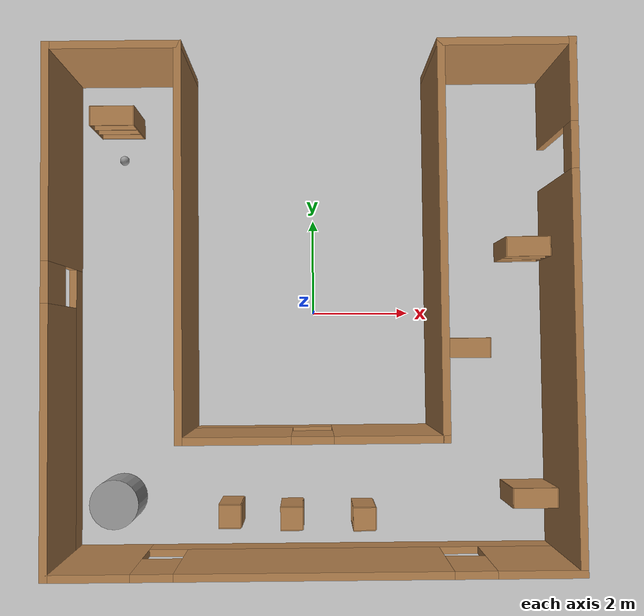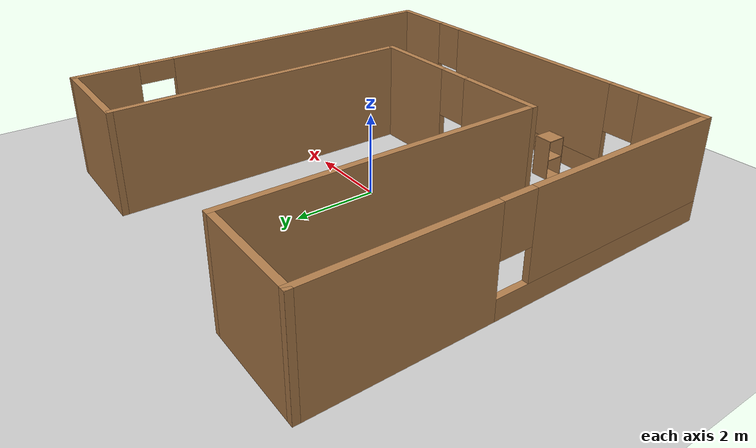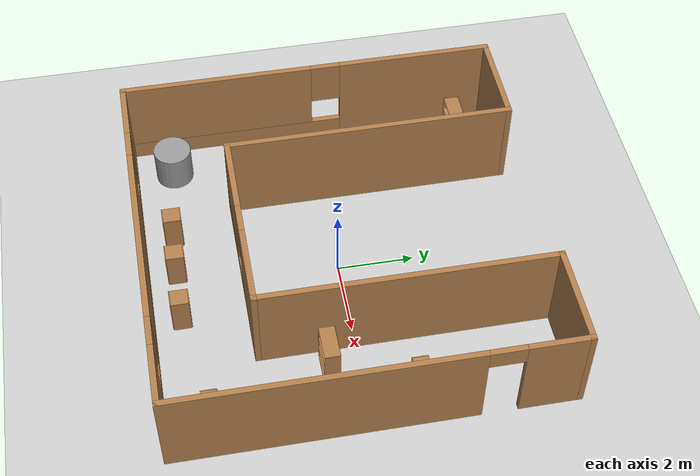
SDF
<sdf version="1.6">
 <world name="default">
  <light name="sun" type="directional">
   <pose>0 0 10 0 -0 0</pose>
   <diffuse>0.8 0.8 0.8 1</diffuse>
   <specular>0.2 0.2 0.2 1</specular>
   <attenuation>
    <range>1000</range>
    <constant>0.9</constant>
    <linear>0.01</linear>
    <quadratic>0.001</quadratic>
   </attenuation>
   <direction>-0.5 0.1 -0.9</direction>
  </light>
  <model name="ground_plane">
   <static>1</static>
   <link name="link">
    <collision name="collision">
     <geometry><plane><normal>0 0 1</normal><size>100 100</size></plane></geometry>
     <surface>
      <contact><collide_bitmask>65535</collide_bitmask></contact>
      <friction><ode><mu>100</mu><mu2>50</mu2></ode></friction>
     </surface>
    </collision>
    <visual name="visual">
     <cast_shadows>0</cast_shadows>
     <geometry><plane><normal>0 0 1</normal><size>100 100</size></plane></geometry>
     <material>
      <script><uri>file://media/materials/scripts/gazebo.material</uri><name>Gazebo/Grey</name></script>
     </material>
    </visual>
   </link>
  </model>
  <gravity>0 0 -9.8</gravity>
  <magnetic_field>6e-06 2.3e-05 -4.2e-05</magnetic_field>
  <atmosphere type="adiabatic"/>
  <physics name="default_physics" default="0" type="ode">
   <max_step_size>0.001</max_step_size>
   <real_time_factor>1</real_time_factor>
   <real_time_update_rate>1000</real_time_update_rate>
  </physics>
  <scene><ambient>0.4 0.4 0.4 1</ambient><background>0.7 0.7 0.7 1</background><shadows>1</shadows></scene>
  <audio><device>default</device></audio>
  <spherical_coordinates>
   <surface_model>EARTH_WGS84</surface_model>
   <latitude_deg>0</latitude_deg>
   <longitude_deg>0</longitude_deg>
   <elevation>0</elevation>
   <heading_deg>0</heading_deg>
  </spherical_coordinates>
  <model name="my_ball">
   <link name="link_0">
    <inertial>
     <mass>1</mass>
     <inertia><ixx>0.1</ixx><ixy>0</ixy><ixz>0</ixz><iyy>0.1</iyy><iyz>0</iyz><izz>0.1</izz></inertia>
    </inertial>
    <visual name="visual">
     <geometry><sphere><radius>0.1</radius></sphere></geometry>
     <material>
      <lighting>1</lighting>
      <script><uri>file://media/materials/scripts/gazebo.material</uri><name>Gazebo/Grey</name></script>
      <shader type="vertex"><normal_map>__default__</normal_map></shader>
      <ambient>1 1 1 1</ambient>
      <diffuse>1 1 1 1</diffuse>
      <specular>1 1 1 1</specular>
      <emissive>1 1 1 1</emissive>
     </material>
    </visual>
    <collision name="collision">
     <geometry><sphere><radius>0.1</radius></sphere></geometry>
     <surface>
      <friction>
       <ode><mu>1</mu><mu2>1</mu2><fdir1>0 0 0</fdir1><slip1>0</slip1><slip2>0</slip2></ode>
       <torsional>
        <coefficient>1</coefficient>
        <patch_radius>0</patch_radius>
        <surface_radius>0</surface_radius>
        <use_patch_radius>1</use_patch_radius>
        <ode><slip>0</slip></ode>
       </torsional>
      </friction>
      <bounce><restitution_coefficient>0</restitution_coefficient><threshold>1e+06</threshold></bounce>
      <contact>
       <collide_without_contact>0</collide_without_contact>
       <collide_without_contact_bitmask>1</collide_without_contact_bitmask>
       <collide_bitmask>1</collide_bitmask>
       <ode>
        <soft_cfm>0</soft_cfm>
        <soft_erp>0.2</soft_erp>
        <kp>1e+13</kp>
        <kd>1</kd>
        <max_vel>0.01</max_vel>
        <min_depth>0</min_depth>
       </ode>
       <bullet>
        <split_impulse>1</split_impulse>
        <split_impulse_penetration_threshold>-0.01</split_impulse_penetration_threshold>
        <soft_cfm>0</soft_cfm>
        <soft_erp>0.2</soft_erp>
        <kp>1e+13</kp>
        <kd>1</kd>
       </bullet>
      </contact>
     </surface>
    </collision>
   </link>
   <static>0</static>
   <pose>-4.04322 3.3476 0.1 0 -0 0</pose>
  </model>
  <plugin name="collision_map_creator" filename="libcollision_map_creator.so"/>
  <model name="bookshelf_clone">
   <static>1</static>
   <link name="link">
    <inertial><mass>1</mass></inertial>
    <collision name="back">
     <pose>0 0.005 0.6 0 -0 0</pose>
     <geometry><box><size>0.9 0.01 1.2</size></box></geometry>
    </collision>
    <visual name="visual1">
     <pose>0 0.005 0.6 0 -0 0</pose>
     <geometry><box><size>0.9 0.01 1.2</size></box></geometry>
     <material>
      <script><uri>file://media/materials/scripts/gazebo.material</uri><name>Gazebo/Wood</name></script>
     </material>
    </visual>
    <collision name="left_side">
     <pose>0.45 -0.195 0.6 0 -0 0</pose>
     <geometry><box><size>0.02 0.4 1.2</size></box></geometry>
    </collision>
    <visual name="visual2">
     <pose>0.45 -0.195 0.6 0 -0 0</pose>
     <geometry><box><size>0.02 0.4 1.2</size></box></geometry>
     <material>
      <script><uri>file://media/materials/scripts/gazebo.material</uri><name>Gazebo/Wood</name></script>
     </material>
    </visual>
    <collision name="right_side">
     <pose>-0.45 -0.195 0.6 0 -0 0</pose>
     <geometry><box><size>0.02 0.4 1.2</size></box></geometry>
    </collision>
    <visual name="visual3">
     <pose>-0.45 -0.195 0.6 0 -0 0</pose>
     <geometry><box><size>0.02 0.4 1.2</size></box></geometry>
     <material>
      <script><uri>file://media/materials/scripts/gazebo.material</uri><name>Gazebo/Wood</name></script>
     </material>
    </visual>
    <collision name="bottom">
     <pose>0 -0.195 0.03 0 -0 0</pose>
     <geometry><box><size>0.88 0.4 0.06</size></box></geometry>
    </collision>
    <visual name="visual4">
     <pose>0 -0.195 0.03 0 -0 0</pose>
     <geometry><box><size>0.88 0.4 0.06</size></box></geometry>
     <material>
      <script><uri>file://media/materials/scripts/gazebo.material</uri><name>Gazebo/Wood</name></script>
     </material>
    </visual>
    <collision name="top">
     <pose>0 -0.195 1.19 0 -0 0</pose>
     <geometry><box><size>0.88 0.4 0.02</size></box></geometry>
    </collision>
    <visual name="visual5">
     <pose>0 -0.195 1.19 0 -0 0</pose>
     <geometry><box><size>0.88 0.4 0.02</size></box></geometry>
     <material>
      <script><uri>file://media/materials/scripts/gazebo.material</uri><name>Gazebo/Wood</name></script>
     </material>
    </visual>
    <collision name="low_shelf">
     <pose>0 -0.195 0.43 0 -0 0</pose>
     <geometry><box><size>0.88 0.4 0.02</size></box></geometry>
    </collision>
    <visual name="visual6">
     <pose>0 -0.195 0.43 0 -0 0</pose>
     <geometry><box><size>0.88 0.4 0.02</size></box></geometry>
     <material>
      <script><uri>file://media/materials/scripts/gazebo.material</uri><name>Gazebo/Wood</name></script>
     </material>
    </visual>
    <collision name="high_shelf">
     <pose>0 -0.195 0.8 0 -0 0</pose>
     <geometry><box><size>0.88 0.4 0.02</size></box></geometry>
    </collision>
    <visual name="visual7">
     <pose>0 -0.195 0.8 0 -0 0</pose>
     <geometry><box><size>0.88 0.4 0.02</size></box></geometry>
     <material>
      <script><uri>file://media/materials/scripts/gazebo.material</uri><name>Gazebo/Wood</name></script>
     </material>
    </visual>
   </link>
   <pose>3.10801 -0.563301 0 0 -0 0</pose>
  </model>
  <model name="bookshelf_clone_0">
   <static>1</static>
   <link name="link">
    <inertial><mass>1</mass></inertial>
    <collision name="back">
     <pose>0 0.005 0.6 0 -0 0</pose>
     <geometry><box><size>0.9 0.01 1.2</size></box></geometry>
    </collision>
    <visual name="visual1">
     <pose>0 0.005 0.6 0 -0 0</pose>
     <geometry><box><size>0.9 0.01 1.2</size></box></geometry>
     <material>
      <script><uri>file://media/materials/scripts/gazebo.material</uri><name>Gazebo/Wood</name></script>
     </material>
    </visual>
    <collision name="left_side">
     <pose>0.45 -0.195 0.6 0 -0 0</pose>
     <geometry><box><size>0.02 0.4 1.2</size></box></geometry>
    </collision>
    <visual name="visual2">
     <pose>0.45 -0.195 0.6 0 -0 0</pose>
     <geometry><box><size>0.02 0.4 1.2</size></box></geometry>
     <material>
      <script><uri>file://media/materials/scripts/gazebo.material</uri><name>Gazebo/Wood</name></script>
     </material>
    </visual>
    <collision name="right_side">
     <pose>-0.45 -0.195 0.6 0 -0 0</pose>
     <geometry><box><size>0.02 0.4 1.2</size></box></geometry>
    </collision>
    <visual name="visual3">
     <pose>-0.45 -0.195 0.6 0 -0 0</pose>
     <geometry><box><size>0.02 0.4 1.2</size></box></geometry>
     <material>
      <script><uri>file://media/materials/scripts/gazebo.material</uri><name>Gazebo/Wood</name></script>
     </material>
    </visual>
    <collision name="bottom">
     <pose>0 -0.195 0.03 0 -0 0</pose>
     <geometry><box><size>0.88 0.4 0.06</size></box></geometry>
    </collision>
    <visual name="visual4">
     <pose>0 -0.195 0.03 0 -0 0</pose>
     <geometry><box><size>0.88 0.4 0.06</size></box></geometry>
     <material>
      <script><uri>file://media/materials/scripts/gazebo.material</uri><name>Gazebo/Wood</name></script>
     </material>
    </visual>
    <collision name="top">
     <pose>0 -0.195 1.19 0 -0 0</pose>
     <geometry><box><size>0.88 0.4 0.02</size></box></geometry>
    </collision>
    <visual name="visual5">
     <pose>0 -0.195 1.19 0 -0 0</pose>
     <geometry><box><size>0.88 0.4 0.02</size></box></geometry>
     <material>
      <script><uri>file://media/materials/scripts/gazebo.material</uri><name>Gazebo/Wood</name></script>
     </material>
    </visual>
    <collision name="low_shelf">
     <pose>0 -0.195 0.43 0 -0 0</pose>
     <geometry><box><size>0.88 0.4 0.02</size></box></geometry>
    </collision>
    <visual name="visual6">
     <pose>0 -0.195 0.43 0 -0 0</pose>
     <geometry><box><size>0.88 0.4 0.02</size></box></geometry>
     <material>
      <script><uri>file://media/materials/scripts/gazebo.material</uri><name>Gazebo/Wood</name></script>
     </material>
    </visual>
    <collision name="high_shelf">
     <pose>0 -0.195 0.8 0 -0 0</pose>
     <geometry><box><size>0.88 0.4 0.02</size></box></geometry>
    </collision>
    <visual name="visual7">
     <pose>0 -0.195 0.8 0 -0 0</pose>
     <geometry><box><size>0.88 0.4 0.02</size></box></geometry>
     <material>
      <script><uri>file://media/materials/scripts/gazebo.material</uri><name>Gazebo/Wood</name></script>
     </material>
    </visual>
   </link>
   <pose>4.40386 -3.57755 0 0 -0 0</pose>
  </model>
  <model name="bookshelf_clone_4">
   <static>1</static>
   <link name="link">
    <inertial><mass>1</mass></inertial>
    <collision name="back">
     <pose>0 0.005 0.6 0 -0 0</pose>
     <geometry><box><size>0.9 0.01 1.2</size></box></geometry>
    </collision>
    <visual name="visual1">
     <pose>0 0.005 0.6 0 -0 0</pose>
     <geometry><box><size>0.9 0.01 1.2</size></box></geometry>
     <material>
      <script><uri>file://media/materials/scripts/gazebo.material</uri><name>Gazebo/Wood</name></script>
     </material>
    </visual>
    <collision name="left_side">
     <pose>0.45 -0.195 0.6 0 -0 0</pose>
     <geometry><box><size>0.02 0.4 1.2</size></box></geometry>
    </collision>
    <visual name="visual2">
     <pose>0.45 -0.195 0.6 0 -0 0</pose>
     <geometry><box><size>0.02 0.4 1.2</size></box></geometry>
     <material>
      <script><uri>file://media/materials/scripts/gazebo.material</uri><name>Gazebo/Wood</name></script>
     </material>
    </visual>
    <collision name="right_side">
     <pose>-0.45 -0.195 0.6 0 -0 0</pose>
     <geometry><box><size>0.02 0.4 1.2</size></box></geometry>
    </collision>
    <visual name="visual3">
     <pose>-0.45 -0.195 0.6 0 -0 0</pose>
     <geometry><box><size>0.02 0.4 1.2</size></box></geometry>
     <material>
      <script><uri>file://media/materials/scripts/gazebo.material</uri><name>Gazebo/Wood</name></script>
     </material>
    </visual>
    <collision name="bottom">
     <pose>0 -0.195 0.03 0 -0 0</pose>
     <geometry><box><size>0.88 0.4 0.06</size></box></geometry>
    </collision>
    <visual name="visual4">
     <pose>0 -0.195 0.03 0 -0 0</pose>
     <geometry><box><size>0.88 0.4 0.06</size></box></geometry>
     <material>
      <script><uri>file://media/materials/scripts/gazebo.material</uri><name>Gazebo/Wood</name></script>
     </material>
    </visual>
    <collision name="top">
     <pose>0 -0.195 1.19 0 -0 0</pose>
     <geometry><box><size>0.88 0.4 0.02</size></box></geometry>
    </collision>
    <visual name="visual5">
     <pose>0 -0.195 1.19 0 -0 0</pose>
     <geometry><box><size>0.88 0.4 0.02</size></box></geometry>
     <material>
      <script><uri>file://media/materials/scripts/gazebo.material</uri><name>Gazebo/Wood</name></script>
     </material>
    </visual>
    <collision name="low_shelf">
     <pose>0 -0.195 0.43 0 -0 0</pose>
     <geometry><box><size>0.88 0.4 0.02</size></box></geometry>
    </collision>
    <visual name="visual6">
     <pose>0 -0.195 0.43 0 -0 0</pose>
     <geometry><box><size>0.88 0.4 0.02</size></box></geometry>
     <material>
      <script><uri>file://media/materials/scripts/gazebo.material</uri><name>Gazebo/Wood</name></script>
     </material>
    </visual>
    <collision name="high_shelf">
     <pose>0 -0.195 0.8 0 -0 0</pose>
     <geometry><box><size>0.88 0.4 0.02</size></box></geometry>
    </collision>
    <visual name="visual7">
     <pose>0 -0.195 0.8 0 -0 0</pose>
     <geometry><box><size>0.88 0.4 0.02</size></box></geometry>
     <material>
      <script><uri>file://media/materials/scripts/gazebo.material</uri><name>Gazebo/Wood</name></script>
     </material>
    </visual>
   </link>
   <pose>-4.07925 4.2363 0 0 -0 0</pose>
  </model>
  <model name="bookshelf_clone_5">
   <static>1</static>
   <link name="link">
    <inertial><mass>1</mass></inertial>
    <collision name="back">
     <pose>0 0.005 0.6 0 -0 0</pose>
     <geometry><box><size>0.9 0.01 1.2</size></box></geometry>
    </collision>
    <visual name="visual1">
     <pose>0 0.005 0.6 0 -0 0</pose>
     <geometry><box><size>0.9 0.01 1.2</size></box></geometry>
     <material>
      <script><uri>file://media/materials/scripts/gazebo.material</uri><name>Gazebo/Wood</name></script>
     </material>
    </visual>
    <collision name="left_side">
     <pose>0.45 -0.195 0.6 0 -0 0</pose>
     <geometry><box><size>0.02 0.4 1.2</size></box></geometry>
    </collision>
    <visual name="visual2">
     <pose>0.45 -0.195 0.6 0 -0 0</pose>
     <geometry><box><size>0.02 0.4 1.2</size></box></geometry>
     <material>
      <script><uri>file://media/materials/scripts/gazebo.material</uri><name>Gazebo/Wood</name></script>
     </material>
    </visual>
    <collision name="right_side">
     <pose>-0.45 -0.195 0.6 0 -0 0</pose>
     <geometry><box><size>0.02 0.4 1.2</size></box></geometry>
    </collision>
    <visual name="visual3">
     <pose>-0.45 -0.195 0.6 0 -0 0</pose>
     <geometry><box><size>0.02 0.4 1.2</size></box></geometry>
     <material>
      <script><uri>file://media/materials/scripts/gazebo.material</uri><name>Gazebo/Wood</name></script>
     </material>
    </visual>
    <collision name="bottom">
     <pose>0 -0.195 0.03 0 -0 0</pose>
     <geometry><box><size>0.88 0.4 0.06</size></box></geometry>
    </collision>
    <visual name="visual4">
     <pose>0 -0.195 0.03 0 -0 0</pose>
     <geometry><box><size>0.88 0.4 0.06</size></box></geometry>
     <material>
      <script><uri>file://media/materials/scripts/gazebo.material</uri><name>Gazebo/Wood</name></script>
     </material>
    </visual>
    <collision name="top">
     <pose>0 -0.195 1.19 0 -0 0</pose>
     <geometry><box><size>0.88 0.4 0.02</size></box></geometry>
    </collision>
    <visual name="visual5">
     <pose>0 -0.195 1.19 0 -0 0</pose>
     <geometry><box><size>0.88 0.4 0.02</size></box></geometry>
     <material>
      <script><uri>file://media/materials/scripts/gazebo.material</uri><name>Gazebo/Wood</name></script>
     </material>
    </visual>
    <collision name="low_shelf">
     <pose>0 -0.195 0.43 0 -0 0</pose>
     <geometry><box><size>0.88 0.4 0.02</size></box></geometry>
    </collision>
    <visual name="visual6">
     <pose>0 -0.195 0.43 0 -0 0</pose>
     <geometry><box><size>0.88 0.4 0.02</size></box></geometry>
     <material>
      <script><uri>file://media/materials/scripts/gazebo.material</uri><name>Gazebo/Wood</name></script>
     </material>
    </visual>
    <collision name="high_shelf">
     <pose>0 -0.195 0.8 0 -0 0</pose>
     <geometry><box><size>0.88 0.4 0.02</size></box></geometry>
    </collision>
    <visual name="visual7">
     <pose>0 -0.195 0.8 0 -0 0</pose>
     <geometry><box><size>0.88 0.4 0.02</size></box></geometry>
     <material>
      <script><uri>file://media/materials/scripts/gazebo.material</uri><name>Gazebo/Wood</name></script>
     </material>
    </visual>
   </link>
   <pose>4.3627 1.48126 0 0 -0 0</pose>
  </model>
  <model name="ball_bearing">
   <link name="link">
    <pose>0 0 0.003 0 -0 0</pose>
    <inertial>
     <mass>0.0011</mass>
     <inertia>
      <ixx>3.96e-09</ixx>
      <ixy>0</ixy>
      <ixz>0</ixz>
      <iyy>3.96e-09</iyy>
      <iyz>0</iyz>
      <izz>3.96e-09</izz>
     </inertia>
    </inertial>
    <collision name="collision">
     <geometry><sphere><radius>0.003</radius></sphere></geometry>
     <surface>
      <contact>
       <poissons_ratio>0.305</poissons_ratio>
       <elastic_modulus>2e+11</elastic_modulus>
       <ode><kp>100000</kp><kd>100</kd><max_vel>100</max_vel><min_depth>0.001</min_depth></ode>
      </contact>
      <friction>
       <torsional>
        <coefficient>1</coefficient>
        <use_patch_radius>0</use_patch_radius>
        <surface_radius>0.01</surface_radius>
       </torsional>
      </friction>
     </surface>
    </collision>
    <visual name="visual">
     <geometry><sphere><radius>0.003</radius></sphere></geometry>
     <material>
      <script><uri>file://media/materials/scripts/gazebo.material</uri><name>Gazebo/Grey</name></script>
     </material>
    </visual>
    <velocity_decay><linear>0</linear><angular>0.005</angular></velocity_decay>
   </link>
   <pose>-4.51921 -1.96699 -0.000911 0 -0 0</pose>
  </model>
  <model name="myhousue">
   <pose>-0.047785 0.05297 0 0 -0 0</pose>
   <link name="Wall_23">
    <pose>0 -5 0 0 -0 0</pose>
    <visual name="Wall_23_Visual_0">
     <pose>-4.2375 0 1.25 0 -0 0</pose>
     <geometry><box><size>1.675 0.15 2.5</size></box></geometry>
     <material>
      <script><uri>file://media/materials/scripts/gazebo.material</uri><name>Gazebo/Wood</name></script>
      <ambient>0.996078 0.47451 0.0196078 1</ambient>
     </material>
     <meta><layer>0</layer></meta>
    </visual>
    <collision name="Wall_23_Collision_0">
     <geometry><box><size>1.675 0.15 2.5</size></box></geometry>
     <pose>-4.2375 0 1.25 0 -0 0</pose>
    </collision>
    <visual name="Wall_23_Visual_1">
     <pose>0.8375 0 0.25 0 -0 0</pose>
     <geometry><box><size>8.475 0.15 0.5</size></box></geometry>
     <material>
      <script><uri>file://media/materials/scripts/gazebo.material</uri><name>Gazebo/Wood</name></script>
      <ambient>0.996078 0.47451 0.0196078 1</ambient>
     </material>
     <meta><layer>0</layer></meta>
    </visual>
    <collision name="Wall_23_Collision_1">
     <geometry><box><size>8.475 0.15 0.5</size></box></geometry>
     <pose>0.8375 0 0.25 0 -0 0</pose>
    </collision>
    <visual name="Wall_23_Visual_2">
     <pose>-0 0 1.5 0 -0 0</pose>
     <geometry><box><size>5.2 0.15 2</size></box></geometry>
     <material>
      <script><uri>file://media/materials/scripts/gazebo.material</uri><name>Gazebo/Wood</name></script>
      <ambient>0.996078 0.47451 0.0196078 1</ambient>
     </material>
     <meta><layer>0</layer></meta>
    </visual>
    <collision name="Wall_23_Collision_2">
     <geometry><box><size>5.2 0.15 2</size></box></geometry>
     <pose>-0 0 1.5 0 -0 0</pose>
    </collision>
    <visual name="Wall_23_Visual_3">
     <pose>4.2375 0 1.5 0 -0 0</pose>
     <geometry><box><size>1.675 0.15 2</size></box></geometry>
     <material>
      <script><uri>file://media/materials/scripts/gazebo.material</uri><name>Gazebo/Wood</name></script>
      <ambient>0.996078 0.47451 0.0196078 1</ambient>
     </material>
     <meta><layer>0</layer></meta>
    </visual>
    <collision name="Wall_23_Collision_3">
     <geometry><box><size>1.675 0.15 2</size></box></geometry>
     <pose>4.2375 0 1.5 0 -0 0</pose>
    </collision>
    <visual name="Wall_23_Visual_4">
     <pose>-3 0 1.9 0 -0 0</pose>
     <geometry><box><size>0.8 0.15 1.2</size></box></geometry>
     <material>
      <script><uri>file://media/materials/scripts/gazebo.material</uri><name>Gazebo/Wood</name></script>
      <ambient>0.996078 0.47451 0.0196078 1</ambient>
     </material>
     <meta><layer>0</layer></meta>
    </visual>
    <collision name="Wall_23_Collision_4">
     <geometry><box><size>0.8 0.15 1.2</size></box></geometry>
     <pose>-3 0 1.9 0 -0 0</pose>
    </collision>
    <visual name="Wall_23_Visual_5">
     <pose>3 0 1.9 0 -0 0</pose>
     <geometry><box><size>0.8 0.15 1.2</size></box></geometry>
     <material>
      <script><uri>file://media/materials/scripts/gazebo.material</uri><name>Gazebo/Wood</name></script>
      <ambient>0.996078 0.47451 0.0196078 1</ambient>
     </material>
     <meta><layer>0</layer></meta>
    </visual>
    <collision name="Wall_23_Collision_5">
     <geometry><box><size>0.8 0.15 1.2</size></box></geometry>
     <pose>3 0 1.9 0 -0 0</pose>
    </collision>
   </link>
   <link name="Wall_25">
    <pose>5 0 0 0 -0 1.5708</pose>
    <visual name="Wall_25_Visual_0">
     <pose>-1.25962 0 1.25 0 -0 0</pose>
     <geometry><box><size>7.63076 0.15 2.5</size></box></geometry>
     <material>
      <script><uri>file://media/materials/scripts/gazebo.material</uri><name>Gazebo/Wood</name></script>
      <ambient>0.996078 0.47451 0.0196078 1</ambient>
     </material>
     <meta><layer>0</layer></meta>
    </visual>
    <collision name="Wall_25_Collision_0">
     <geometry><box><size>7.63076 0.15 2.5</size></box></geometry>
     <pose>-1.25962 0 1.25 0 -0 0</pose>
    </collision>
    <visual name="Wall_25_Visual_1">
     <pose>4.26538 0 1.25 0 -0 0</pose>
     <geometry><box><size>1.61924 0.15 2.5</size></box></geometry>
     <material>
      <script><uri>file://media/materials/scripts/gazebo.material</uri><name>Gazebo/Wood</name></script>
      <ambient>0.996078 0.47451 0.0196078 1</ambient>
     </material>
     <meta><layer>0</layer></meta>
    </visual>
    <collision name="Wall_25_Collision_1">
     <geometry><box><size>1.61924 0.15 2.5</size></box></geometry>
     <pose>4.26538 0 1.25 0 -0 0</pose>
    </collision>
    <visual name="Wall_25_Visual_2">
     <pose>3.00576 0 2.25 0 -0 0</pose>
     <geometry><box><size>0.9 0.15 0.5</size></box></geometry>
     <material>
      <script><uri>file://media/materials/scripts/gazebo.material</uri><name>Gazebo/Wood</name></script>
      <ambient>0.996078 0.47451 0.0196078 1</ambient>
     </material>
     <meta><layer>0</layer></meta>
    </visual>
    <collision name="Wall_25_Collision_2">
     <geometry><box><size>0.9 0.15 0.5</size></box></geometry>
     <pose>3.00576 0 2.25 0 -0 0</pose>
    </collision>
   </link>
   <link name="Wall_27">
    <collision name="Wall_27_Collision">
     <geometry><box><size>2.65 0.15 2.5</size></box></geometry>
     <pose>0 0 1.25 0 -0 0</pose>
    </collision>
    <visual name="Wall_27_Visual">
     <pose>0 0 1.25 0 -0 0</pose>
     <geometry><box><size>2.65 0.15 2.5</size></box></geometry>
     <material>
      <script><uri>file://media/materials/scripts/gazebo.material</uri><name>Gazebo/Wood</name></script>
      <ambient>0.996078 0.47451 0.0196078 1</ambient>
     </material>
     <meta><layer>0</layer></meta>
    </visual>
    <pose>3.75 5 0 0 -0 3.14159</pose>
   </link>
   <link name="Wall_29">
    <collision name="Wall_29_Collision">
     <geometry><box><size>7.65 0.15 2.5</size></box></geometry>
     <pose>0 0 1.25 0 -0 0</pose>
    </collision>
    <visual name="Wall_29_Visual">
     <pose>0 0 1.25 0 -0 0</pose>
     <geometry><box><size>7.65 0.15 2.5</size></box></geometry>
     <material>
      <script><uri>file://media/materials/scripts/gazebo.material</uri><name>Gazebo/Wood</name></script>
      <ambient>0.996078 0.47451 0.0196078 1</ambient>
     </material>
     <meta><layer>0</layer></meta>
    </visual>
    <pose>2.5 1.25 0 0 -0 -1.5708</pose>
   </link>
   <link name="Wall_30">
    <pose>0 -2.5 0 0 -0 3.14159</pose>
    <visual name="Wall_30_Visual_0">
     <pose>-1.4875 0 1.25 0 -0 0</pose>
     <geometry><box><size>2.175 0.15 2.5</size></box></geometry>
     <material>
      <script><uri>file://media/materials/scripts/gazebo.material</uri><name>Gazebo/Wood</name></script>
      <ambient>0.996078 0.47451 0.0196078 1</ambient>
     </material>
     <meta><layer>0</layer></meta>
    </visual>
    <collision name="Wall_30_Collision_0">
     <geometry><box><size>2.175 0.15 2.5</size></box></geometry>
     <pose>-1.4875 0 1.25 0 -0 0</pose>
    </collision>
    <visual name="Wall_30_Visual_1">
     <pose>1.0875 0 0.25 0 -0 0</pose>
     <geometry><box><size>2.975 0.15 0.5</size></box></geometry>
     <material>
      <script><uri>file://media/materials/scripts/gazebo.material</uri><name>Gazebo/Wood</name></script>
      <ambient>0.996078 0.47451 0.0196078 1</ambient>
     </material>
     <meta><layer>0</layer></meta>
    </visual>
    <collision name="Wall_30_Collision_1">
     <geometry><box><size>2.975 0.15 0.5</size></box></geometry>
     <pose>1.0875 0 0.25 0 -0 0</pose>
    </collision>
    <visual name="Wall_30_Visual_2">
     <pose>1.4875 0 1.5 0 -0 0</pose>
     <geometry><box><size>2.175 0.15 2</size></box></geometry>
     <material>
      <script><uri>file://media/materials/scripts/gazebo.material</uri><name>Gazebo/Wood</name></script>
      <ambient>0.996078 0.47451 0.0196078 1</ambient>
     </material>
     <meta><layer>0</layer></meta>
    </visual>
    <collision name="Wall_30_Collision_2">
     <geometry><box><size>2.175 0.15 2</size></box></geometry>
     <pose>1.4875 0 1.5 0 -0 0</pose>
    </collision>
    <visual name="Wall_30_Visual_3">
     <pose>0 0 1.9 0 -0 0</pose>
     <geometry><box><size>0.8 0.15 1.2</size></box></geometry>
     <material>
      <script><uri>file://media/materials/scripts/gazebo.material</uri><name>Gazebo/Wood</name></script>
      <ambient>0.996078 0.47451 0.0196078 1</ambient>
     </material>
     <meta><layer>0</layer></meta>
    </visual>
    <collision name="Wall_30_Collision_3">
     <geometry><box><size>0.8 0.15 1.2</size></box></geometry>
     <pose>0 0 1.9 0 -0 0</pose>
    </collision>
   </link>
   <link name="Wall_35">
    <collision name="Wall_35_Collision">
     <geometry><box><size>7.65 0.15 2.5</size></box></geometry>
     <pose>0 0 1.25 0 -0 0</pose>
    </collision>
    <visual name="Wall_35_Visual">
     <pose>0 0 1.25 0 -0 0</pose>
     <geometry><box><size>7.65 0.15 2.5</size></box></geometry>
     <material>
      <script><uri>file://media/materials/scripts/gazebo.material</uri><name>Gazebo/Wood</name></script>
      <ambient>0.996078 0.47451 0.0196078 1</ambient>
     </material>
     <meta><layer>0</layer></meta>
    </visual>
    <pose>-2.5 1.25 0 0 -0 1.5708</pose>
   </link>
   <link name="Wall_37">
    <collision name="Wall_37_Collision">
     <geometry><box><size>2.65 0.15 2.5</size></box></geometry>
     <pose>0 0 1.25 0 -0 0</pose>
    </collision>
    <visual name="Wall_37_Visual">
     <pose>0 0 1.25 0 -0 0</pose>
     <geometry><box><size>2.65 0.15 2.5</size></box></geometry>
     <material>
      <script><uri>file://media/materials/scripts/gazebo.material</uri><name>Gazebo/Wood</name></script>
      <ambient>0.996078 0.47451 0.0196078 1</ambient>
     </material>
     <meta><layer>0</layer></meta>
    </visual>
    <pose>-3.75 5 0 0 -0 3.14159</pose>
   </link>
   <link name="Wall_38">
    <pose>-5 0 0 0 -0 -1.5708</pose>
    <visual name="Wall_38_Visual_0">
     <pose>-2.98762 0 1.25 0 -0 0</pose>
     <geometry><box><size>4.17525 0.15 2.5</size></box></geometry>
     <material>
      <script><uri>file://media/materials/scripts/gazebo.material</uri><name>Gazebo/Wood</name></script>
      <ambient>0.996078 0.47451 0.0196078 1</ambient>
     </material>
     <meta><layer>0</layer></meta>
    </visual>
    <collision name="Wall_38_Collision_0">
     <geometry><box><size>4.17525 0.15 2.5</size></box></geometry>
     <pose>-2.98762 0 1.25 0 -0 0</pose>
    </collision>
    <visual name="Wall_38_Visual_1">
     <pose>2.08763 0 0.25 0 -0 0</pose>
     <geometry><box><size>5.97525 0.15 0.5</size></box></geometry>
     <material>
      <script><uri>file://media/materials/scripts/gazebo.material</uri><name>Gazebo/Wood</name></script>
      <ambient>0.996078 0.47451 0.0196078 1</ambient>
     </material>
     <meta><layer>0</layer></meta>
    </visual>
    <collision name="Wall_38_Collision_1">
     <geometry><box><size>5.97525 0.15 0.5</size></box></geometry>
     <pose>2.08763 0 0.25 0 -0 0</pose>
    </collision>
    <visual name="Wall_38_Visual_2">
     <pose>2.48762 0 1.5 0 -0 0</pose>
     <geometry><box><size>5.17525 0.15 2</size></box></geometry>
     <material>
      <script><uri>file://media/materials/scripts/gazebo.material</uri><name>Gazebo/Wood</name></script>
      <ambient>0.996078 0.47451 0.0196078 1</ambient>
     </material>
     <meta><layer>0</layer></meta>
    </visual>
    <collision name="Wall_38_Collision_2">
     <geometry><box><size>5.17525 0.15 2</size></box></geometry>
     <pose>2.48762 0 1.5 0 -0 0</pose>
    </collision>
    <visual name="Wall_38_Visual_3">
     <pose>-0.5 0 1.9 0 -0 0</pose>
     <geometry><box><size>0.8 0.15 1.2</size></box></geometry>
     <material>
      <script><uri>file://media/materials/scripts/gazebo.material</uri><name>Gazebo/Wood</name></script>
      <ambient>0.996078 0.47451 0.0196078 1</ambient>
     </material>
     <meta><layer>0</layer></meta>
    </visual>
    <collision name="Wall_38_Collision_3">
     <geometry><box><size>0.8 0.15 1.2</size></box></geometry>
     <pose>-0.5 0 1.9 0 -0 0</pose>
    </collision>
   </link>
   <static>1</static>
  </model>
  <model name="cabinet">
   <static>1</static>
   <link name="cabinet_bottom_plate">
    <inertial>
     <pose>0 0 -1 0 -0 0</pose>
     <inertia><ixx>2.05</ixx><ixy>0</ixy><ixz>0</ixz><iyy>2.05</iyy><iyz>0</iyz><izz>2.05</izz></inertia>
     <mass>25</mass>
    </inertial>
    <collision name="cabinet_bottom_plate_geom">
     <pose>0 0 0.01 0 -0 0</pose>
     <geometry><box><size>0.45 0.45 0.02</size></box></geometry>
    </collision>
    <visual name="cabinet_bottom_plate_geom_visual">
     <pose>0 0 0.01 0 -0 0</pose>
     <geometry><box><size>0.45 0.45 0.02</size></box></geometry>
     <material>
      <script><uri>file://media/materials/scripts/gazebo.material</uri><name>Gazebo/Wood</name></script>
     </material>
    </visual>
    <collision name="cabinet_bottom_plate_geom_cabinet_back_plate">
     <pose>0.235 0 0.51 0 -0 0</pose>
     <geometry><box><size>0.02 0.45 1.02</size></box></geometry>
    </collision>
    <visual name="cabinet_bottom_plate_geom_cabinet_back_plate_visual">
     <pose>0.235 0 0.51 0 -0 0</pose>
     <geometry><box><size>0.02 0.45 1.02</size></box></geometry>
     <material>
      <script><uri>file://media/materials/scripts/gazebo.material</uri><name>Gazebo/Wood</name></script>
     </material>
    </visual>
    <collision name="cabinet_bottom_plate_geom_cabinet_left_plate">
     <pose>0 0.235 0.51 0 -0 0</pose>
     <geometry><box><size>0.45 0.02 1.02</size></box></geometry>
    </collision>
    <visual name="cabinet_bottom_plate_geom_cabinet_left_plate_visual">
     <pose>0 0.235 0.51 0 -0 0</pose>
     <geometry><box><size>0.45 0.02 1.02</size></box></geometry>
     <material>
      <script><uri>file://media/materials/scripts/gazebo.material</uri><name>Gazebo/Wood</name></script>
     </material>
    </visual>
    <collision name="cabinet_bottom_plate_geom_cabinet_middle_plate">
     <pose>0 0 0.51 0 -0 0</pose>
     <geometry><box><size>0.45 0.45 0.02</size></box></geometry>
    </collision>
    <visual name="cabinet_bottom_plate_geom_cabinet_middle_plate_visual">
     <pose>0 0 0.51 0 -0 0</pose>
     <geometry><box><size>0.45 0.45 0.02</size></box></geometry>
     <material>
      <script><uri>file://media/materials/scripts/gazebo.material</uri><name>Gazebo/Wood</name></script>
     </material>
    </visual>
    <collision name="cabinet_bottom_plate_geom_cabinet_right_plate">
     <pose>0 -0.235 0.51 0 -0 0</pose>
     <geometry><box><size>0.45 0.02 1.02</size></box></geometry>
    </collision>
    <visual name="cabinet_bottom_plate_geom_cabinet_right_plate_visual">
     <pose>0 -0.235 0.51 0 -0 0</pose>
     <geometry><box><size>0.45 0.02 1.02</size></box></geometry>
     <material>
      <script><uri>file://media/materials/scripts/gazebo.material</uri><name>Gazebo/Wood</name></script>
     </material>
    </visual>
    <collision name="cabinet_bottom_plate_geom_cabinet_top_plate">
     <pose>0 0 1.01 0 -0 0</pose>
     <geometry><box><size>0.45 0.45 0.02</size></box></geometry>
    </collision>
    <visual name="cabinet_bottom_plate_geom_cabinet_top_plate_visual">
     <pose>0 0 1.01 0 -0 0</pose>
     <geometry><box><size>0.45 0.45 0.02</size></box></geometry>
     <material>
      <script><uri>file://media/materials/scripts/gazebo.material</uri><name>Gazebo/Wood</name></script>
     </material>
    </visual>
   </link>
   <pose>-1.73543 -4.11247 0 0 -0 0</pose>
  </model>
  <model name="cabinet_0">
   <static>1</static>
   <link name="cabinet_bottom_plate">
    <inertial>
     <pose>0 0 -1 0 -0 0</pose>
     <inertia><ixx>2.05</ixx><ixy>0</ixy><ixz>0</ixz><iyy>2.05</iyy><iyz>0</iyz><izz>2.05</izz></inertia>
     <mass>25</mass>
    </inertial>
    <collision name="cabinet_bottom_plate_geom">
     <pose>0 0 0.01 0 -0 0</pose>
     <geometry><box><size>0.45 0.45 0.02</size></box></geometry>
    </collision>
    <visual name="cabinet_bottom_plate_geom_visual">
     <pose>0 0 0.01 0 -0 0</pose>
     <geometry><box><size>0.45 0.45 0.02</size></box></geometry>
     <material>
      <script><uri>file://media/materials/scripts/gazebo.material</uri><name>Gazebo/Wood</name></script>
     </material>
    </visual>
    <collision name="cabinet_bottom_plate_geom_cabinet_back_plate">
     <pose>0.235 0 0.51 0 -0 0</pose>
     <geometry><box><size>0.02 0.45 1.02</size></box></geometry>
    </collision>
    <visual name="cabinet_bottom_plate_geom_cabinet_back_plate_visual">
     <pose>0.235 0 0.51 0 -0 0</pose>
     <geometry><box><size>0.02 0.45 1.02</size></box></geometry>
     <material>
      <script><uri>file://media/materials/scripts/gazebo.material</uri><name>Gazebo/Wood</name></script>
     </material>
    </visual>
    <collision name="cabinet_bottom_plate_geom_cabinet_left_plate">
     <pose>0 0.235 0.51 0 -0 0</pose>
     <geometry><box><size>0.45 0.02 1.02</size></box></geometry>
    </collision>
    <visual name="cabinet_bottom_plate_geom_cabinet_left_plate_visual">
     <pose>0 0.235 0.51 0 -0 0</pose>
     <geometry><box><size>0.45 0.02 1.02</size></box></geometry>
     <material>
      <script><uri>file://media/materials/scripts/gazebo.material</uri><name>Gazebo/Wood</name></script>
     </material>
    </visual>
    <collision name="cabinet_bottom_plate_geom_cabinet_middle_plate">
     <pose>0 0 0.51 0 -0 0</pose>
     <geometry><box><size>0.45 0.45 0.02</size></box></geometry>
    </collision>
    <visual name="cabinet_bottom_plate_geom_cabinet_middle_plate_visual">
     <pose>0 0 0.51 0 -0 0</pose>
     <geometry><box><size>0.45 0.45 0.02</size></box></geometry>
     <material>
      <script><uri>file://media/materials/scripts/gazebo.material</uri><name>Gazebo/Wood</name></script>
     </material>
    </visual>
    <collision name="cabinet_bottom_plate_geom_cabinet_right_plate">
     <pose>0 -0.235 0.51 0 -0 0</pose>
     <geometry><box><size>0.45 0.02 1.02</size></box></geometry>
    </collision>
    <visual name="cabinet_bottom_plate_geom_cabinet_right_plate_visual">
     <pose>0 -0.235 0.51 0 -0 0</pose>
     <geometry><box><size>0.45 0.02 1.02</size></box></geometry>
     <material>
      <script><uri>file://media/materials/scripts/gazebo.material</uri><name>Gazebo/Wood</name></script>
     </material>
    </visual>
    <collision name="cabinet_bottom_plate_geom_cabinet_top_plate">
     <pose>0 0 1.01 0 -0 0</pose>
     <geometry><box><size>0.45 0.45 0.02</size></box></geometry>
    </collision>
    <visual name="cabinet_bottom_plate_geom_cabinet_top_plate_visual">
     <pose>0 0 1.01 0 -0 0</pose>
     <geometry><box><size>0.45 0.45 0.02</size></box></geometry>
     <material>
      <script><uri>file://media/materials/scripts/gazebo.material</uri><name>Gazebo/Wood</name></script>
     </material>
    </visual>
   </link>
   <pose>-0.486857 -4.16357 0 0 -0 0</pose>
  </model>
  <model name="cabinet_1">
   <static>1</static>
   <link name="cabinet_bottom_plate">
    <inertial>
     <pose>0 0 -1 0 -0 0</pose>
     <inertia><ixx>2.05</ixx><ixy>0</ixy><ixz>0</ixz><iyy>2.05</iyy><iyz>0</iyz><izz>2.05</izz></inertia>
     <mass>25</mass>
    </inertial>
    <collision name="cabinet_bottom_plate_geom">
     <pose>0 0 0.01 0 -0 0</pose>
     <geometry><box><size>0.45 0.45 0.02</size></box></geometry>
    </collision>
    <visual name="cabinet_bottom_plate_geom_visual">
     <pose>0 0 0.01 0 -0 0</pose>
     <geometry><box><size>0.45 0.45 0.02</size></box></geometry>
     <material>
      <script><uri>file://media/materials/scripts/gazebo.material</uri><name>Gazebo/Wood</name></script>
     </material>
    </visual>
    <collision name="cabinet_bottom_plate_geom_cabinet_back_plate">
     <pose>0.235 0 0.51 0 -0 0</pose>
     <geometry><box><size>0.02 0.45 1.02</size></box></geometry>
    </collision>
    <visual name="cabinet_bottom_plate_geom_cabinet_back_plate_visual">
     <pose>0.235 0 0.51 0 -0 0</pose>
     <geometry><box><size>0.02 0.45 1.02</size></box></geometry>
     <material>
      <script><uri>file://media/materials/scripts/gazebo.material</uri><name>Gazebo/Wood</name></script>
     </material>
    </visual>
    <collision name="cabinet_bottom_plate_geom_cabinet_left_plate">
     <pose>0 0.235 0.51 0 -0 0</pose>
     <geometry><box><size>0.45 0.02 1.02</size></box></geometry>
    </collision>
    <visual name="cabinet_bottom_plate_geom_cabinet_left_plate_visual">
     <pose>0 0.235 0.51 0 -0 0</pose>
     <geometry><box><size>0.45 0.02 1.02</size></box></geometry>
     <material>
      <script><uri>file://media/materials/scripts/gazebo.material</uri><name>Gazebo/Wood</name></script>
     </material>
    </visual>
    <collision name="cabinet_bottom_plate_geom_cabinet_middle_plate">
     <pose>0 0 0.51 0 -0 0</pose>
     <geometry><box><size>0.45 0.45 0.02</size></box></geometry>
    </collision>
    <visual name="cabinet_bottom_plate_geom_cabinet_middle_plate_visual">
     <pose>0 0 0.51 0 -0 0</pose>
     <geometry><box><size>0.45 0.45 0.02</size></box></geometry>
     <material>
      <script><uri>file://media/materials/scripts/gazebo.material</uri><name>Gazebo/Wood</name></script>
     </material>
    </visual>
    <collision name="cabinet_bottom_plate_geom_cabinet_right_plate">
     <pose>0 -0.235 0.51 0 -0 0</pose>
     <geometry><box><size>0.45 0.02 1.02</size></box></geometry>
    </collision>
    <visual name="cabinet_bottom_plate_geom_cabinet_right_plate_visual">
     <pose>0 -0.235 0.51 0 -0 0</pose>
     <geometry><box><size>0.45 0.02 1.02</size></box></geometry>
     <material>
      <script><uri>file://media/materials/scripts/gazebo.material</uri><name>Gazebo/Wood</name></script>
     </material>
    </visual>
    <collision name="cabinet_bottom_plate_geom_cabinet_top_plate">
     <pose>0 0 1.01 0 -0 0</pose>
     <geometry><box><size>0.45 0.45 0.02</size></box></geometry>
    </collision>
    <visual name="cabinet_bottom_plate_geom_cabinet_top_plate_visual">
     <pose>0 0 1.01 0 -0 0</pose>
     <geometry><box><size>0.45 0.45 0.02</size></box></geometry>
     <material>
      <script><uri>file://media/materials/scripts/gazebo.material</uri><name>Gazebo/Wood</name></script>
     </material>
    </visual>
   </link>
   <pose>0.98475 -4.18605 0 0 -0 0</pose>
  </model>
  <model name="unit_cylinder">
   <pose>-4.07561 -3.86069 0.499997 3e-06 4e-06 -0</pose>
   <link name="link">
    <inertial>
     <mass>1</mass>
     <inertia><ixx>0.145833</ixx><ixy>0</ixy><ixz>0</ixz><iyy>0.145833</iyy><iyz>0</iyz><izz>0.125</izz></inertia>
    </inertial>
    <collision name="collision">
     <geometry><cylinder><radius>0.5</radius><length>1</length></cylinder></geometry>
    </collision>
    <visual name="visual">
     <geometry><cylinder><radius>0.5</radius><length>1</length></cylinder></geometry>
     <material>
      <script><name>Gazebo/Grey</name><uri>file://media/materials/scripts/gazebo.material</uri></script>
     </material>
    </visual>
   </link>
  </model>
 </world>
</sdf>
